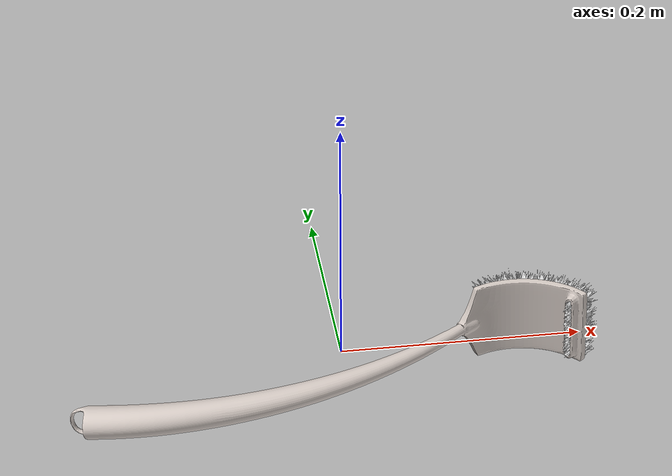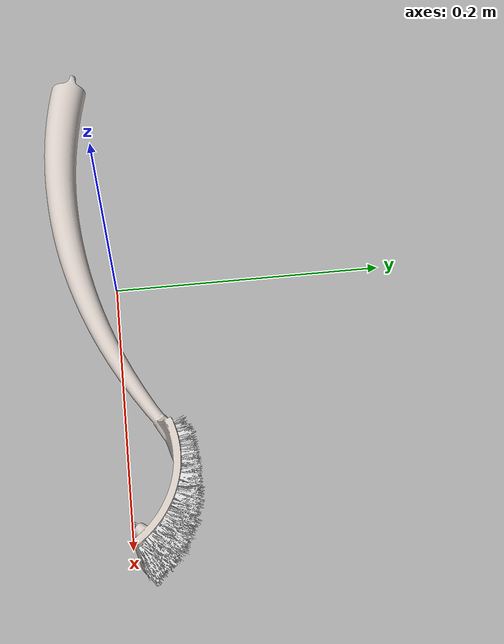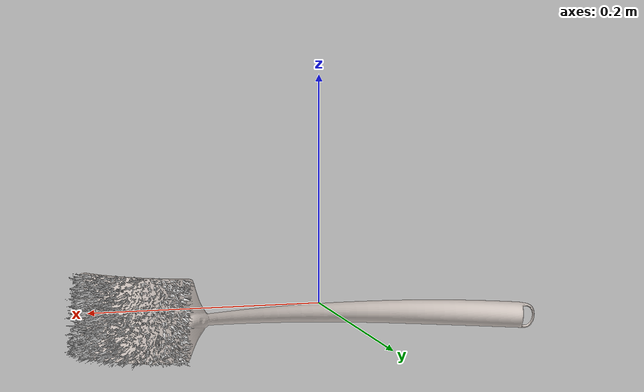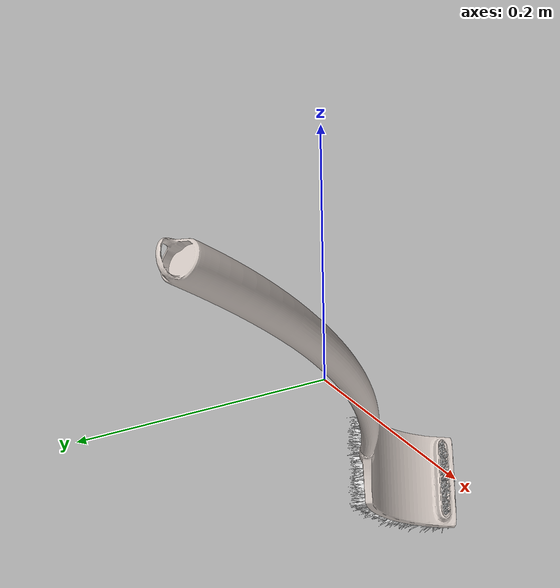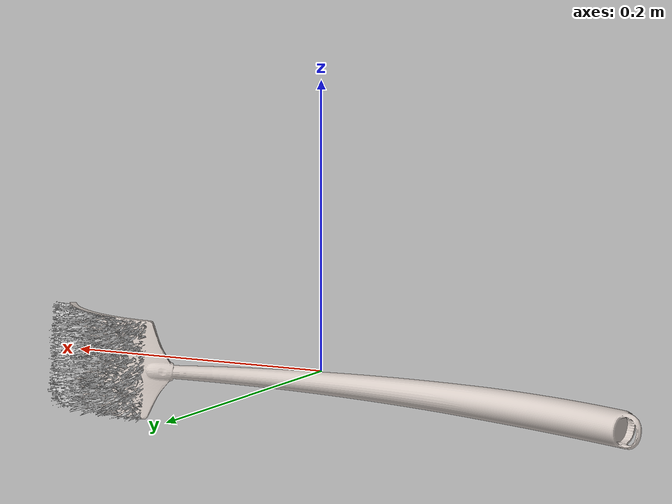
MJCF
<?xml version="1.0" ?>
<mujoco model="brush">
	<compiler meshdir="brush/meshes" texturedir="brush/textures" angle="radian" autolimits="true" balanceinertia="true" boundmass="0.000001" boundinertia="0.000001"/>
	<default>
		<default class="visual">
			<geom contype="0" conaffinity="0"/>
		</default>
		<default class="collision">
			<geom rgba="1.0 0.0 0.0 0.0"/>
		</default>
	</default>
	<asset>
		<mesh name="BrushHead" file="stl/BrushHead.stl" scale="1.0 1.0 1.0"/>
		<mesh name="BrushHead_001" file="stl/BrushHead_001.stl" scale="1.0 1.0 1.0"/>
		<mesh name="BrushHead_002" file="stl/BrushHead_002.stl" scale="1.0 1.0 1.0"/>
		<mesh name="BrushHead_003" file="stl/BrushHead_003.stl" scale="1.0 1.0 1.0"/>
		<mesh name="BrushHead_004" file="stl/BrushHead_004.stl" scale="1.0 1.0 1.0"/>
		<mesh name="BrushHandle" file="stl/BrushHandle.stl" scale="1.0 1.0 1.0"/>
		<mesh name="BrushHandle_001" file="stl/BrushHandle_001.stl" scale="1.0 1.0 1.0"/>
		<mesh name="BrushHandle_002" file="stl/BrushHandle_002.stl" scale="1.0 1.0 1.0"/>
		<mesh name="BrushHandle_003" file="stl/BrushHandle_003.stl" scale="1.0 1.0 1.0"/>
		<mesh name="BrushHandle_004" file="stl/BrushHandle_004.stl" scale="1.0 1.0 1.0"/>
		<mesh name="BrushHandle_005" file="stl/BrushHandle_005.stl" scale="1.0 1.0 1.0"/>
		<mesh name="BrushHandle_006" file="stl/BrushHandle_006.stl" scale="1.0 1.0 1.0"/>
		<mesh name="BrushHandle_007" file="stl/BrushHandle_007.stl" scale="1.0 1.0 1.0"/>
		<mesh name="BrushHandle_008" file="stl/BrushHandle_008.stl" scale="1.0 1.0 1.0"/>
		<mesh name="BrushHandle_009" file="stl/BrushHandle_009.stl" scale="1.0 1.0 1.0"/>
		<mesh name="BrushHandle_010" file="stl/BrushHandle_010.stl" scale="1.0 1.0 1.0"/>
		<mesh name="BrushHandle_011" file="stl/BrushHandle_011.stl" scale="1.0 1.0 1.0"/>
		<mesh name="BrushHandle_012" file="stl/BrushHandle_012.stl" scale="1.0 1.0 1.0"/>
		<mesh name="BrushHandle_013" file="stl/BrushHandle_013.stl" scale="1.0 1.0 1.0"/>
		<mesh name="BrushHandle_014" file="stl/BrushHandle_014.stl" scale="1.0 1.0 1.0"/>
		<mesh name="BrushHandle_015" file="stl/BrushHandle_015.stl" scale="1.0 1.0 1.0"/>
		<mesh name="BrushHandle_016" file="stl/BrushHandle_016.stl" scale="1.0 1.0 1.0"/>
		<mesh name="BrushHandle_017" file="stl/BrushHandle_017.stl" scale="1.0 1.0 1.0"/>
		<mesh name="BrushHandle_018" file="stl/BrushHandle_018.stl" scale="1.0 1.0 1.0"/>
		<mesh name="BrushHandle_019" file="stl/BrushHandle_019.stl" scale="1.0 1.0 1.0"/>
		<mesh name="BrushHandle_020" file="stl/BrushHandle_020.stl" scale="1.0 1.0 1.0"/>
		<mesh name="BrushHandle_021" file="stl/BrushHandle_021.stl" scale="1.0 1.0 1.0"/>
		<mesh name="BrushHandle_022" file="stl/BrushHandle_022.stl" scale="1.0 1.0 1.0"/>
		<mesh name="BrushHandle_023" file="stl/BrushHandle_023.stl" scale="1.0 1.0 1.0"/>
		<mesh name="BrushHandle_024" file="stl/BrushHandle_024.stl" scale="1.0 1.0 1.0"/>
		<mesh name="BrushHandle_025" file="stl/BrushHandle_025.stl" scale="1.0 1.0 1.0"/>
		<mesh name="BrushHandle_026" file="stl/BrushHandle_026.stl" scale="1.0 1.0 1.0"/>
		<mesh name="BrushHandle_027" file="stl/BrushHandle_027.stl" scale="1.0 1.0 1.0"/>
		<mesh name="BrushHandle_028" file="stl/BrushHandle_028.stl" scale="1.0 1.0 1.0"/>
		<mesh name="BrushHandle_029" file="stl/BrushHandle_029.stl" scale="1.0 1.0 1.0"/>
		<mesh name="BrushHandle_030" file="stl/BrushHandle_030.stl" scale="1.0 1.0 1.0"/>
		<mesh name="BrushHandle_031" file="stl/BrushHandle_031.stl" scale="1.0 1.0 1.0"/>
		<mesh name="BrushHandle_032" file="stl/BrushHandle_032.stl" scale="1.0 1.0 1.0"/>
		<mesh name="BrushHandle_033" file="stl/BrushHandle_033.stl" scale="1.0 1.0 1.0"/>
		<mesh name="BrushHandle_034" file="stl/BrushHandle_034.stl" scale="1.0 1.0 1.0"/>
		<mesh name="BrushHandle_035" file="stl/BrushHandle_035.stl" scale="1.0 1.0 1.0"/>
		<mesh name="BrushHandle_036" file="stl/BrushHandle_036.stl" scale="1.0 1.0 1.0"/>
		<mesh name="BrushHandle_037" file="stl/BrushHandle_037.stl" scale="1.0 1.0 1.0"/>
		<mesh name="BrushHandle_038" file="stl/BrushHandle_038.stl" scale="1.0 1.0 1.0"/>
		<mesh name="BrushHandle_039" file="stl/BrushHandle_039.stl" scale="1.0 1.0 1.0"/>
		<mesh name="BrushHandle_040" file="stl/BrushHandle_040.stl" scale="1.0 1.0 1.0"/>
		<mesh name="BrushHandle_041" file="stl/BrushHandle_041.stl" scale="1.0 1.0 1.0"/>
		<mesh name="BrushHandle_042" file="stl/BrushHandle_042.stl" scale="1.0 1.0 1.0"/>
		<mesh name="BrushHandle_043" file="stl/BrushHandle_043.stl" scale="1.0 1.0 1.0"/>
		<mesh name="BrushHandle_044" file="stl/BrushHandle_044.stl" scale="1.0 1.0 1.0"/>
		<mesh name="BrushHandle_045" file="stl/BrushHandle_045.stl" scale="1.0 1.0 1.0"/>
		<mesh name="BrushHandle_046" file="stl/BrushHandle_046.stl" scale="1.0 1.0 1.0"/>
		<mesh name="BrushHandle_047" file="stl/BrushHandle_047.stl" scale="1.0 1.0 1.0"/>
		<mesh name="BrushHandle_048" file="stl/BrushHandle_048.stl" scale="1.0 1.0 1.0"/>
		<mesh name="BrushHandle_049" file="stl/BrushHandle_049.stl" scale="1.0 1.0 1.0"/>
		<mesh name="BrushHandle_050" file="stl/BrushHandle_050.stl" scale="1.0 1.0 1.0"/>
		<mesh name="BrushHandle_051" file="stl/BrushHandle_051.stl" scale="1.0 1.0 1.0"/>
		<mesh name="BrushHandle_052" file="stl/BrushHandle_052.stl" scale="1.0 1.0 1.0"/>
		<mesh name="BrushHandle_053" file="stl/BrushHandle_053.stl" scale="1.0 1.0 1.0"/>
		<mesh name="BrushHandle_054" file="stl/BrushHandle_054.stl" scale="1.0 1.0 1.0"/>
		<mesh name="BrushHandle_055" file="stl/BrushHandle_055.stl" scale="1.0 1.0 1.0"/>
		<mesh name="BrushHandle_056" file="stl/BrushHandle_056.stl" scale="1.0 1.0 1.0"/>
		<mesh name="BrushHandle_057" file="stl/BrushHandle_057.stl" scale="1.0 1.0 1.0"/>
		<mesh name="BrushHandle_058" file="stl/BrushHandle_058.stl" scale="1.0 1.0 1.0"/>
		<mesh name="BrushHandle_059" file="stl/BrushHandle_059.stl" scale="1.0 1.0 1.0"/>
		<mesh name="BrushHandle_060" file="stl/BrushHandle_060.stl" scale="1.0 1.0 1.0"/>
		<mesh name="BrushHandle_061" file="stl/BrushHandle_061.stl" scale="1.0 1.0 1.0"/>
		<mesh name="BrushHandle_062" file="stl/BrushHandle_062.stl" scale="1.0 1.0 1.0"/>
		<mesh name="BrushHandle_063" file="stl/BrushHandle_063.stl" scale="1.0 1.0 1.0"/>
		<material name="M_BrushHead" rgba="0.8353999853134155 0.7947999835014343 0.7699999809265137 1.0" emission="0.0"/>
		<material name="M_BrushHandle" rgba="0.8537999987602234 0.8537999987602234 0.8537999987602234 1.0" emission="0.0"/>
	</asset>
	<worldbody>
		<body name="brush" pos="0.0 0.0 0.0" quat="1.0 0.0 0.0 0.0">
			<body name="brush_head" pos="0.0 0.0 0.0" quat="1.0 0.0 0.0 0.0">
				<inertial mass="0.14380942285060883" pos="-0.012227881699800491 -0.013956385664641857 -0.013627697713673115" quat="0.9206263422966003 0.37479618191719055 0.003168086986988783 0.10938429087400436" diaginertia="8.549939229851589e-05 0.002847365103662014 0.0028882231563329697"/>
				<geom name="BrushHead" type="mesh" pos="0.0 0.0 0.0" quat="1.0 0.0 0.0 0.0" mesh="BrushHead" material="M_BrushHead" class="visual"/>
				<geom name="BrushHead_001" type="mesh" pos="0.0 0.0 0.0" quat="1.0 0.0 0.0 0.0" mesh="BrushHead_001" class="collision"/>
				<geom name="BrushHead_002" type="mesh" pos="0.0 0.0 0.0" quat="1.0 0.0 0.0 0.0" mesh="BrushHead_002" class="collision"/>
				<geom name="BrushHead_003" type="mesh" pos="0.0 0.0 0.0" quat="1.0 0.0 0.0 0.0" mesh="BrushHead_003" class="collision"/>
				<geom name="BrushHead_004" type="mesh" pos="0.0 0.0 0.0" quat="1.0 0.0 0.0 0.0" mesh="BrushHead_004" class="collision"/>
			</body>
			<body name="brush_handle" pos="0.0 0.0 0.0" quat="1.0 0.0 0.0 0.0">
				<inertial mass="0.024592626839876175" pos="0.1408890038728714 0.0217297300696373 -0.0002752738946583122" quat="0.7412041425704956 -0.6672812104225159 -0.04818421229720116 0.0550500750541687" diaginertia="9.212667464453261e-06 0.0005393718020059168 0.0005434915074147284"/>
				<geom name="BrushHandle" type="mesh" pos="0.0 0.0 0.0" quat="1.0 0.0 0.0 0.0" mesh="BrushHandle" material="M_BrushHandle" class="visual"/>
				<geom name="BrushHandle_001" type="mesh" pos="0.0 0.0 0.0" quat="1.0 0.0 0.0 0.0" mesh="BrushHandle_001" class="collision"/>
				<geom name="BrushHandle_002" type="mesh" pos="0.0 0.0 0.0" quat="1.0 0.0 0.0 0.0" mesh="BrushHandle_002" class="collision"/>
				<geom name="BrushHandle_003" type="mesh" pos="0.0 0.0 0.0" quat="1.0 0.0 0.0 0.0" mesh="BrushHandle_003" class="collision"/>
				<geom name="BrushHandle_004" type="mesh" pos="0.0 0.0 0.0" quat="1.0 0.0 0.0 0.0" mesh="BrushHandle_004" class="collision"/>
				<geom name="BrushHandle_005" type="mesh" pos="0.0 0.0 0.0" quat="1.0 0.0 0.0 0.0" mesh="BrushHandle_005" class="collision"/>
				<geom name="BrushHandle_006" type="mesh" pos="0.0 0.0 0.0" quat="1.0 0.0 0.0 0.0" mesh="BrushHandle_006" class="collision"/>
				<geom name="BrushHandle_007" type="mesh" pos="0.0 0.0 0.0" quat="1.0 0.0 0.0 0.0" mesh="BrushHandle_007" class="collision"/>
				<geom name="BrushHandle_008" type="mesh" pos="0.0 0.0 0.0" quat="1.0 0.0 0.0 0.0" mesh="BrushHandle_008" class="collision"/>
				<geom name="BrushHandle_009" type="mesh" pos="0.0 0.0 0.0" quat="1.0 0.0 0.0 0.0" mesh="BrushHandle_009" class="collision"/>
				<geom name="BrushHandle_010" type="mesh" pos="0.0 0.0 0.0" quat="1.0 0.0 0.0 0.0" mesh="BrushHandle_010" class="collision"/>
				<geom name="BrushHandle_011" type="mesh" pos="0.0 0.0 0.0" quat="1.0 0.0 0.0 0.0" mesh="BrushHandle_011" class="collision"/>
				<geom name="BrushHandle_012" type="mesh" pos="0.0 0.0 0.0" quat="1.0 0.0 0.0 0.0" mesh="BrushHandle_012" class="collision"/>
				<geom name="BrushHandle_013" type="mesh" pos="0.0 0.0 0.0" quat="1.0 0.0 0.0 0.0" mesh="BrushHandle_013" class="collision"/>
				<geom name="BrushHandle_014" type="mesh" pos="0.0 0.0 0.0" quat="1.0 0.0 0.0 0.0" mesh="BrushHandle_014" class="collision"/>
				<geom name="BrushHandle_015" type="mesh" pos="0.0 0.0 0.0" quat="1.0 0.0 0.0 0.0" mesh="BrushHandle_015" class="collision"/>
				<geom name="BrushHandle_016" type="mesh" pos="0.0 0.0 0.0" quat="1.0 0.0 0.0 0.0" mesh="BrushHandle_016" class="collision"/>
				<geom name="BrushHandle_017" type="mesh" pos="0.0 0.0 0.0" quat="1.0 0.0 0.0 0.0" mesh="BrushHandle_017" class="collision"/>
				<geom name="BrushHandle_018" type="mesh" pos="0.0 0.0 0.0" quat="1.0 0.0 0.0 0.0" mesh="BrushHandle_018" class="collision"/>
				<geom name="BrushHandle_019" type="mesh" pos="0.0 0.0 0.0" quat="1.0 0.0 0.0 0.0" mesh="BrushHandle_019" class="collision"/>
				<geom name="BrushHandle_020" type="mesh" pos="0.0 0.0 0.0" quat="1.0 0.0 0.0 0.0" mesh="BrushHandle_020" class="collision"/>
				<geom name="BrushHandle_021" type="mesh" pos="0.0 0.0 0.0" quat="1.0 0.0 0.0 0.0" mesh="BrushHandle_021" class="collision"/>
				<geom name="BrushHandle_022" type="mesh" pos="0.0 0.0 0.0" quat="1.0 0.0 0.0 0.0" mesh="BrushHandle_022" class="collision"/>
				<geom name="BrushHandle_023" type="mesh" pos="0.0 0.0 0.0" quat="1.0 0.0 0.0 0.0" mesh="BrushHandle_023" class="collision"/>
				<geom name="BrushHandle_024" type="mesh" pos="0.0 0.0 0.0" quat="1.0 0.0 0.0 0.0" mesh="BrushHandle_024" class="collision"/>
				<geom name="BrushHandle_025" type="mesh" pos="0.0 0.0 0.0" quat="1.0 0.0 0.0 0.0" mesh="BrushHandle_025" class="collision"/>
				<geom name="BrushHandle_026" type="mesh" pos="0.0 0.0 0.0" quat="1.0 0.0 0.0 0.0" mesh="BrushHandle_026" class="collision"/>
				<geom name="BrushHandle_027" type="mesh" pos="0.0 0.0 0.0" quat="1.0 0.0 0.0 0.0" mesh="BrushHandle_027" class="collision"/>
				<geom name="BrushHandle_028" type="mesh" pos="0.0 0.0 0.0" quat="1.0 0.0 0.0 0.0" mesh="BrushHandle_028" class="collision"/>
				<geom name="BrushHandle_029" type="mesh" pos="0.0 0.0 0.0" quat="1.0 0.0 0.0 0.0" mesh="BrushHandle_029" class="collision"/>
				<geom name="BrushHandle_030" type="mesh" pos="0.0 0.0 0.0" quat="1.0 0.0 0.0 0.0" mesh="BrushHandle_030" class="collision"/>
				<geom name="BrushHandle_031" type="mesh" pos="0.0 0.0 0.0" quat="1.0 0.0 0.0 0.0" mesh="BrushHandle_031" class="collision"/>
				<geom name="BrushHandle_032" type="mesh" pos="0.0 0.0 0.0" quat="1.0 0.0 0.0 0.0" mesh="BrushHandle_032" class="collision"/>
				<geom name="BrushHandle_033" type="mesh" pos="0.0 0.0 0.0" quat="1.0 0.0 0.0 0.0" mesh="BrushHandle_033" class="collision"/>
				<geom name="BrushHandle_034" type="mesh" pos="0.0 0.0 0.0" quat="1.0 0.0 0.0 0.0" mesh="BrushHandle_034" class="collision"/>
				<geom name="BrushHandle_035" type="mesh" pos="0.0 0.0 0.0" quat="1.0 0.0 0.0 0.0" mesh="BrushHandle_035" class="collision"/>
				<geom name="BrushHandle_036" type="mesh" pos="0.0 0.0 0.0" quat="1.0 0.0 0.0 0.0" mesh="BrushHandle_036" class="collision"/>
				<geom name="BrushHandle_037" type="mesh" pos="0.0 0.0 0.0" quat="1.0 0.0 0.0 0.0" mesh="BrushHandle_037" class="collision"/>
				<geom name="BrushHandle_038" type="mesh" pos="0.0 0.0 0.0" quat="1.0 0.0 0.0 0.0" mesh="BrushHandle_038" class="collision"/>
				<geom name="BrushHandle_039" type="mesh" pos="0.0 0.0 0.0" quat="1.0 0.0 0.0 0.0" mesh="BrushHandle_039" class="collision"/>
				<geom name="BrushHandle_040" type="mesh" pos="0.0 0.0 0.0" quat="1.0 0.0 0.0 0.0" mesh="BrushHandle_040" class="collision"/>
				<geom name="BrushHandle_041" type="mesh" pos="0.0 0.0 0.0" quat="1.0 0.0 0.0 0.0" mesh="BrushHandle_041" class="collision"/>
				<geom name="BrushHandle_042" type="mesh" pos="0.0 0.0 0.0" quat="1.0 0.0 0.0 0.0" mesh="BrushHandle_042" class="collision"/>
				<geom name="BrushHandle_043" type="mesh" pos="0.0 0.0 0.0" quat="1.0 0.0 0.0 0.0" mesh="BrushHandle_043" class="collision"/>
				<geom name="BrushHandle_044" type="mesh" pos="0.0 0.0 0.0" quat="1.0 0.0 0.0 0.0" mesh="BrushHandle_044" class="collision"/>
				<geom name="BrushHandle_045" type="mesh" pos="0.0 0.0 0.0" quat="1.0 0.0 0.0 0.0" mesh="BrushHandle_045" class="collision"/>
				<geom name="BrushHandle_046" type="mesh" pos="0.0 0.0 0.0" quat="1.0 0.0 0.0 0.0" mesh="BrushHandle_046" class="collision"/>
				<geom name="BrushHandle_047" type="mesh" pos="0.0 0.0 0.0" quat="1.0 0.0 0.0 0.0" mesh="BrushHandle_047" class="collision"/>
				<geom name="BrushHandle_048" type="mesh" pos="0.0 0.0 0.0" quat="1.0 0.0 0.0 0.0" mesh="BrushHandle_048" class="collision"/>
				<geom name="BrushHandle_049" type="mesh" pos="0.0 0.0 0.0" quat="1.0 0.0 0.0 0.0" mesh="BrushHandle_049" class="collision"/>
				<geom name="BrushHandle_050" type="mesh" pos="0.0 0.0 0.0" quat="1.0 0.0 0.0 0.0" mesh="BrushHandle_050" class="collision"/>
				<geom name="BrushHandle_051" type="mesh" pos="0.0 0.0 0.0" quat="1.0 0.0 0.0 0.0" mesh="BrushHandle_051" class="collision"/>
				<geom name="BrushHandle_052" type="mesh" pos="0.0 0.0 0.0" quat="1.0 0.0 0.0 0.0" mesh="BrushHandle_052" class="collision"/>
				<geom name="BrushHandle_053" type="mesh" pos="0.0 0.0 0.0" quat="1.0 0.0 0.0 0.0" mesh="BrushHandle_053" class="collision"/>
				<geom name="BrushHandle_054" type="mesh" pos="0.0 0.0 0.0" quat="1.0 0.0 0.0 0.0" mesh="BrushHandle_054" class="collision"/>
				<geom name="BrushHandle_055" type="mesh" pos="0.0 0.0 0.0" quat="1.0 0.0 0.0 0.0" mesh="BrushHandle_055" class="collision"/>
				<geom name="BrushHandle_056" type="mesh" pos="0.0 0.0 0.0" quat="1.0 0.0 0.0 0.0" mesh="BrushHandle_056" class="collision"/>
				<geom name="BrushHandle_057" type="mesh" pos="0.0 0.0 0.0" quat="1.0 0.0 0.0 0.0" mesh="BrushHandle_057" class="collision"/>
				<geom name="BrushHandle_058" type="mesh" pos="0.0 0.0 0.0" quat="1.0 0.0 0.0 0.0" mesh="BrushHandle_058" class="collision"/>
				<geom name="BrushHandle_059" type="mesh" pos="0.0 0.0 0.0" quat="1.0 0.0 0.0 0.0" mesh="BrushHandle_059" class="collision"/>
				<geom name="BrushHandle_060" type="mesh" pos="0.0 0.0 0.0" quat="1.0 0.0 0.0 0.0" mesh="BrushHandle_060" class="collision"/>
				<geom name="BrushHandle_061" type="mesh" pos="0.0 0.0 0.0" quat="1.0 0.0 0.0 0.0" mesh="BrushHandle_061" class="collision"/>
				<geom name="BrushHandle_062" type="mesh" pos="0.0 0.0 0.0" quat="1.0 0.0 0.0 0.0" mesh="BrushHandle_062" class="collision"/>
				<geom name="BrushHandle_063" type="mesh" pos="0.0 0.0 0.0" quat="1.0 0.0 0.0 0.0" mesh="BrushHandle_063" class="collision"/>
			</body>
		</body>
	</worldbody>
	<equality/>
</mujoco>
